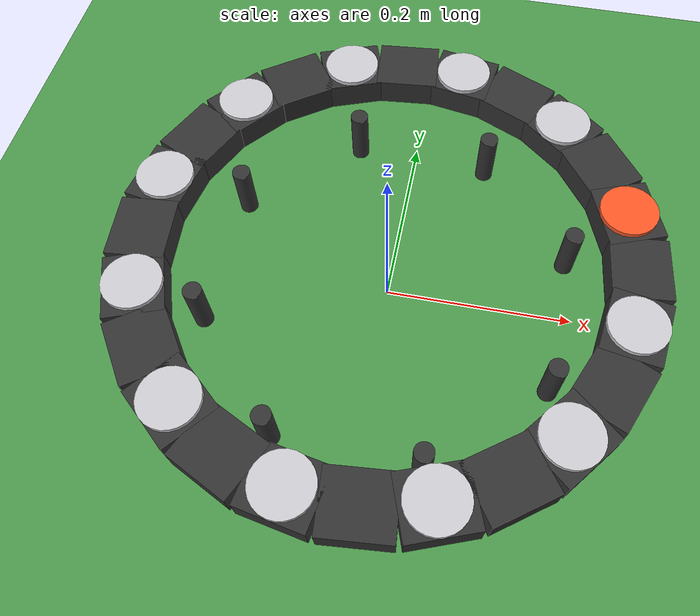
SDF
<sdf version="1.6">
 <world name="quadcopter">
  <physics name="1ms" type="ignored">
   <max_step_size>0.001</max_step_size>
   <real_time_factor>1.0</real_time_factor>
   <real_time_update_rate>500</real_time_update_rate>
  </physics>
  <plugin filename="ignition-gazebo-physics-system" name="gz::sim::systems::Physics"/>
  <plugin filename="ignition-gazebo-scene-broadcaster-system" name="gz::sim::systems::SceneBroadcaster"/>
  <plugin filename="ignition-gazebo-user-commands-system" name="gz::sim::systems::UserCommands"/>
  <plugin filename="gz-sim-imu-system" name="gz::sim::systems::Imu"/>
  <scene><background>0.6 0.8 1.0 1</background><ambient>0.5 0.5 0.5 1</ambient></scene>
  <light type="directional" name="sun">
   <pose>0 0 10 0 0 0</pose>
   <diffuse>0.8 0.8 0.8 1</diffuse>
   <specular>0.2 0.2 0.2 1</specular>
   <attenuation>
    <range>1000</range>
    <constant>0.9</constant>
    <linear>0.01</linear>
    <quadratic>0.001</quadratic>
   </attenuation>
   <direction>-0.5 0.1 -0.9</direction>
  </light>
  <include>
   <uri>/home/wesley/multi_drone_control/simulation_assets/tejen/bench_m2/m2_bench_ring.sdf</uri>
   <pose>0 0 0.1 0 0 0.349065850399</pose>
   <plugin filename="gz-sim-pose-publisher-system" name="gz::sim::systems::PosePublisher">
    <publish_link_pose>true</publish_link_pose>
    <publish_model_pose>true</publish_model_pose>
    <publish_nested_model_pose>true</publish_nested_model_pose>
    <use_pose_vector_msg>true</use_pose_vector_msg>
    <update_frequency>120</update_frequency>
   </plugin>
  </include>
  <model name="floor">
   <static>true</static>
   <link name="link">
    <collision name="col">
     <geometry><plane><normal>0 0 1</normal><size>100 100</size></plane></geometry>
     <surface><contact><collide_bitmask>0x0003</collide_bitmask></contact></surface>
    </collision>
    <visual name="vis">
     <geometry><plane><normal>0 0 1</normal><size>100 100</size></plane></geometry>
     <material>
      <ambient>0.2 0.5 0.2 1</ambient>
      <diffuse>0.3 0.6 0.3 1</diffuse>
      <specular>0.05 0.05 0.05 1</specular>
     </material>
    </visual>
   </link>
  </model>
  <model name="bench_hanger_0">
   <pose>-0.124808023933 0.349456808097 0.598402027544 0 0 0.209439510239</pose>
   <link name="hanger_link">
    <gravity>false</gravity>
    <inertial><mass>1.0</mass><inertia><ixx>0.01</ixx><iyy>0.01</iyy><izz>0.01</izz></inertia></inertial>
   </link>
   <joint name="hanger_to_world" type="fixed"><parent>world</parent><child>hanger_link</child></joint>
   <plugin filename="gz-sim-detachable-joint-system" name="gz::sim::systems::DetachableJoint">
    <parent_link>hanger_link</parent_link>
    <child_model>x3_0</child_model>
    <child_link>X3/base_link</child_link>
    <detach_topic>/bench/hanger_0/detach</detach_topic>
    <attach_topic>/bench/hanger_0/attach</attach_topic>
    <output_topic>/bench/hanger_0/state</output_topic>
   </plugin>
  </model>
  <model name="bench_hanger_1">
   <pose>0.348903089409 0.128574463944 0.598190026385 0 0 -0.314159265359</pose>
   <link name="hanger_link">
    <gravity>false</gravity>
    <inertial><mass>1.0</mass><inertia><ixx>0.01</ixx><iyy>0.01</iyy><izz>0.01</izz></inertia></inertial>
   </link>
   <joint name="hanger_to_world" type="fixed"><parent>world</parent><child>hanger_link</child></joint>
   <plugin filename="gz-sim-detachable-joint-system" name="gz::sim::systems::DetachableJoint">
    <parent_link>hanger_link</parent_link>
    <child_model>x3_1</child_model>
    <child_link>X3/base_link</child_link>
    <detach_topic>/bench/hanger_1/detach</detach_topic>
    <attach_topic>/bench/hanger_1/attach</attach_topic>
    <output_topic>/bench/hanger_1/state</output_topic>
   </plugin>
  </model>
  <model name="bench_hanger_2">
   <pose>-0.352067476285 -0.128954289524 0.597307032548 0 0 0.575958653158</pose>
   <link name="hanger_link">
    <gravity>false</gravity>
    <inertial><mass>1.0</mass><inertia><ixx>0.01</ixx><iyy>0.01</iyy><izz>0.01</izz></inertia></inertial>
   </link>
   <joint name="hanger_to_world" type="fixed"><parent>world</parent><child>hanger_link</child></joint>
   <plugin filename="gz-sim-detachable-joint-system" name="gz::sim::systems::DetachableJoint">
    <parent_link>hanger_link</parent_link>
    <child_model>x3_2</child_model>
    <child_link>X3/base_link</child_link>
    <detach_topic>/bench/hanger_2/detach</detach_topic>
    <attach_topic>/bench/hanger_2/attach</attach_topic>
    <output_topic>/bench/hanger_2/state</output_topic>
   </plugin>
  </model>
  <model name="bench_hanger_3">
   <pose>0.13002870033 -0.354643681158 0.596491180632 0 0 -0.715584993318</pose>
   <link name="hanger_link">
    <gravity>false</gravity>
    <inertial><mass>1.0</mass><inertia><ixx>0.01</ixx><iyy>0.01</iyy><izz>0.01</izz></inertia></inertial>
   </link>
   <joint name="hanger_to_world" type="fixed"><parent>world</parent><child>hanger_link</child></joint>
   <plugin filename="gz-sim-detachable-joint-system" name="gz::sim::systems::DetachableJoint">
    <parent_link>hanger_link</parent_link>
    <child_model>x3_3</child_model>
    <child_link>X3/base_link</child_link>
    <detach_topic>/bench/hanger_3/detach</detach_topic>
    <attach_topic>/bench/hanger_3/attach</attach_topic>
    <output_topic>/bench/hanger_3/state</output_topic>
   </plugin>
  </model>
 </world>
</sdf>

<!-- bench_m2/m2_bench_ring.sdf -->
<sdf version="1.6">
  <model name="payload_model">
    <static>false</static>
    <link name="payload_link"><inertial><mass>0.86</mass><inertia><ixx>2.733e-02</ixx><ixy>0</ixy><ixz>0</ixz><iyy>2.733e-02</iyy><iyz>0</iyz><izz>5.452e-02</izz></inertia></inertial>

      <collision name="ring_segment_0_collision">
        <pose>0.250000000000 0.000000000000 -0.020000000000 0 0 1.570796326795</pose>
        <geometry><box><size>0.068067840828 0.060000000000 0.030000000000</size></box></geometry>
      <surface><contact><collide_bitmask>0x0002</collide_bitmask></contact></surface></collision>
      <visual name="ring_segment_0_visual">
        <pose>0.250000000000 0.000000000000 -0.020000000000 0 0 1.570796326795</pose>
        <geometry><box><size>0.068067840828 0.060000000000 0.030000000000</size></box></geometry>
        <material><ambient>0.12 0.12 0.12 1</ambient><diffuse>0.20 0.20 0.20 1</diffuse></material>
      </visual>
      <collision name="ring_segment_1_collision">
        <pose>0.241481456572 0.064704761276 -0.020000000000 0 0 1.832595714594</pose>
        <geometry><box><size>0.068067840828 0.060000000000 0.030000000000</size></box></geometry>
      <surface><contact><collide_bitmask>0x0002</collide_bitmask></contact></surface></collision>
      <visual name="ring_segment_1_visual">
        <pose>0.241481456572 0.064704761276 -0.020000000000 0 0 1.832595714594</pose>
        <geometry><box><size>0.068067840828 0.060000000000 0.030000000000</size></box></geometry>
        <material><ambient>0.12 0.12 0.12 1</ambient><diffuse>0.20 0.20 0.20 1</diffuse></material>
      </visual>
      <collision name="ring_segment_2_collision">
        <pose>0.216506350946 0.125000000000 -0.020000000000 0 0 2.094395102393</pose>
        <geometry><box><size>0.068067840828 0.060000000000 0.030000000000</size></box></geometry>
      <surface><contact><collide_bitmask>0x0002</collide_bitmask></contact></surface></collision>
      <visual name="ring_segment_2_visual">
        <pose>0.216506350946 0.125000000000 -0.020000000000 0 0 2.094395102393</pose>
        <geometry><box><size>0.068067840828 0.060000000000 0.030000000000</size></box></geometry>
        <material><ambient>0.12 0.12 0.12 1</ambient><diffuse>0.20 0.20 0.20 1</diffuse></material>
      </visual>
      <collision name="ring_segment_3_collision">
        <pose>0.176776695297 0.176776695297 -0.020000000000 0 0 2.356194490192</pose>
        <geometry><box><size>0.068067840828 0.060000000000 0.030000000000</size></box></geometry>
      <surface><contact><collide_bitmask>0x0002</collide_bitmask></contact></surface></collision>
      <visual name="ring_segment_3_visual">
        <pose>0.176776695297 0.176776695297 -0.020000000000 0 0 2.356194490192</pose>
        <geometry><box><size>0.068067840828 0.060000000000 0.030000000000</size></box></geometry>
        <material><ambient>0.12 0.12 0.12 1</ambient><diffuse>0.20 0.20 0.20 1</diffuse></material>
      </visual>
      <collision name="ring_segment_4_collision">
        <pose>0.125000000000 0.216506350946 -0.020000000000 0 0 2.617993877991</pose>
        <geometry><box><size>0.068067840828 0.060000000000 0.030000000000</size></box></geometry>
      <surface><contact><collide_bitmask>0x0002</collide_bitmask></contact></surface></collision>
      <visual name="ring_segment_4_visual">
        <pose>0.125000000000 0.216506350946 -0.020000000000 0 0 2.617993877991</pose>
        <geometry><box><size>0.068067840828 0.060000000000 0.030000000000</size></box></geometry>
        <material><ambient>0.12 0.12 0.12 1</ambient><diffuse>0.20 0.20 0.20 1</diffuse></material>
      </visual>
      <collision name="ring_segment_5_collision">
        <pose>0.064704761276 0.241481456572 -0.020000000000 0 0 2.879793265791</pose>
        <geometry><box><size>0.068067840828 0.060000000000 0.030000000000</size></box></geometry>
      <surface><contact><collide_bitmask>0x0002</collide_bitmask></contact></surface></collision>
      <visual name="ring_segment_5_visual">
        <pose>0.064704761276 0.241481456572 -0.020000000000 0 0 2.879793265791</pose>
        <geometry><box><size>0.068067840828 0.060000000000 0.030000000000</size></box></geometry>
        <material><ambient>0.12 0.12 0.12 1</ambient><diffuse>0.20 0.20 0.20 1</diffuse></material>
      </visual>
      <collision name="ring_segment_6_collision">
        <pose>0.000000000000 0.250000000000 -0.020000000000 0 0 3.141592653590</pose>
        <geometry><box><size>0.068067840828 0.060000000000 0.030000000000</size></box></geometry>
      <surface><contact><collide_bitmask>0x0002</collide_bitmask></contact></surface></collision>
      <visual name="ring_segment_6_visual">
        <pose>0.000000000000 0.250000000000 -0.020000000000 0 0 3.141592653590</pose>
        <geometry><box><size>0.068067840828 0.060000000000 0.030000000000</size></box></geometry>
        <material><ambient>0.12 0.12 0.12 1</ambient><diffuse>0.20 0.20 0.20 1</diffuse></material>
      </visual>
      <collision name="ring_segment_7_collision">
        <pose>-0.064704761276 0.241481456572 -0.020000000000 0 0 3.403392041389</pose>
        <geometry><box><size>0.068067840828 0.060000000000 0.030000000000</size></box></geometry>
      <surface><contact><collide_bitmask>0x0002</collide_bitmask></contact></surface></collision>
      <visual name="ring_segment_7_visual">
        <pose>-0.064704761276 0.241481456572 -0.020000000000 0 0 3.403392041389</pose>
        <geometry><box><size>0.068067840828 0.060000000000 0.030000000000</size></box></geometry>
        <material><ambient>0.12 0.12 0.12 1</ambient><diffuse>0.20 0.20 0.20 1</diffuse></material>
      </visual>
      <collision name="ring_segment_8_collision">
        <pose>-0.125000000000 0.216506350946 -0.020000000000 0 0 3.665191429188</pose>
        <geometry><box><size>0.068067840828 0.060000000000 0.030000000000</size></box></geometry>
      <surface><contact><collide_bitmask>0x0002</collide_bitmask></contact></surface></collision>
      <visual name="ring_segment_8_visual">
        <pose>-0.125000000000 0.216506350946 -0.020000000000 0 0 3.665191429188</pose>
        <geometry><box><size>0.068067840828 0.060000000000 0.030000000000</size></box></geometry>
        <material><ambient>0.12 0.12 0.12 1</ambient><diffuse>0.20 0.20 0.20 1</diffuse></material>
      </visual>
      <collision name="ring_segment_9_collision">
        <pose>-0.176776695297 0.176776695297 -0.020000000000 0 0 3.926990816987</pose>
        <geometry><box><size>0.068067840828 0.060000000000 0.030000000000</size></box></geometry>
      <surface><contact><collide_bitmask>0x0002</collide_bitmask></contact></surface></collision>
      <visual name="ring_segment_9_visual">
        <pose>-0.176776695297 0.176776695297 -0.020000000000 0 0 3.926990816987</pose>
        <geometry><box><size>0.068067840828 0.060000000000 0.030000000000</size></box></geometry>
        <material><ambient>0.12 0.12 0.12 1</ambient><diffuse>0.20 0.20 0.20 1</diffuse></material>
      </visual>
      <collision name="ring_segment_10_collision">
        <pose>-0.216506350946 0.125000000000 -0.020000000000 0 0 4.188790204786</pose>
        <geometry><box><size>0.068067840828 0.060000000000 0.030000000000</size></box></geometry>
      <surface><contact><collide_bitmask>0x0002</collide_bitmask></contact></surface></collision>
      <visual name="ring_segment_10_visual">
        <pose>-0.216506350946 0.125000000000 -0.020000000000 0 0 4.188790204786</pose>
        <geometry><box><size>0.068067840828 0.060000000000 0.030000000000</size></box></geometry>
        <material><ambient>0.12 0.12 0.12 1</ambient><diffuse>0.20 0.20 0.20 1</diffuse></material>
      </visual>
      <collision name="ring_segment_11_collision">
        <pose>-0.241481456572 0.064704761276 -0.020000000000 0 0 4.450589592586</pose>
        <geometry><box><size>0.068067840828 0.060000000000 0.030000000000</size></box></geometry>
      <surface><contact><collide_bitmask>0x0002</collide_bitmask></contact></surface></collision>
      <visual name="ring_segment_11_visual">
        <pose>-0.241481456572 0.064704761276 -0.020000000000 0 0 4.450589592586</pose>
        <geometry><box><size>0.068067840828 0.060000000000 0.030000000000</size></box></geometry>
        <material><ambient>0.12 0.12 0.12 1</ambient><diffuse>0.20 0.20 0.20 1</diffuse></material>
      </visual>
      <collision name="ring_segment_12_collision">
        <pose>-0.250000000000 0.000000000000 -0.020000000000 0 0 4.712388980385</pose>
        <geometry><box><size>0.068067840828 0.060000000000 0.030000000000</size></box></geometry>
      <surface><contact><collide_bitmask>0x0002</collide_bitmask></contact></surface></collision>
      <visual name="ring_segment_12_visual">
        <pose>-0.250000000000 0.000000000000 -0.020000000000 0 0 4.712388980385</pose>
        <geometry><box><size>0.068067840828 0.060000000000 0.030000000000</size></box></geometry>
        <material><ambient>0.12 0.12 0.12 1</ambient><diffuse>0.20 0.20 0.20 1</diffuse></material>
      </visual>
      <collision name="ring_segment_13_collision">
        <pose>-0.241481456572 -0.064704761276 -0.020000000000 0 0 4.974188368184</pose>
        <geometry><box><size>0.068067840828 0.060000000000 0.030000000000</size></box></geometry>
      <surface><contact><collide_bitmask>0x0002</collide_bitmask></contact></surface></collision>
      <visual name="ring_segment_13_visual">
        <pose>-0.241481456572 -0.064704761276 -0.020000000000 0 0 4.974188368184</pose>
        <geometry><box><size>0.068067840828 0.060000000000 0.030000000000</size></box></geometry>
        <material><ambient>0.12 0.12 0.12 1</ambient><diffuse>0.20 0.20 0.20 1</diffuse></material>
      </visual>
      <collision name="ring_segment_14_collision">
        <pose>-0.216506350946 -0.125000000000 -0.020000000000 0 0 5.235987755983</pose>
        <geometry><box><size>0.068067840828 0.060000000000 0.030000000000</size></box></geometry>
      <surface><contact><collide_bitmask>0x0002</collide_bitmask></contact></surface></collision>
      <visual name="ring_segment_14_visual">
        <pose>-0.216506350946 -0.125000000000 -0.020000000000 0 0 5.235987755983</pose>
        <geometry><box><size>0.068067840828 0.060000000000 0.030000000000</size></box></geometry>
        <material><ambient>0.12 0.12 0.12 1</ambient><diffuse>0.20 0.20 0.20 1</diffuse></material>
      </visual>
      <collision name="ring_segment_15_collision">
        <pose>-0.176776695297 -0.176776695297 -0.020000000000 0 0 5.497787143782</pose>
        <geometry><box><size>0.068067840828 0.060000000000 0.030000000000</size></box></geometry>
      <surface><contact><collide_bitmask>0x0002</collide_bitmask></contact></surface></collision>
      <visual name="ring_segment_15_visual">
        <pose>-0.176776695297 -0.176776695297 -0.020000000000 0 0 5.497787143782</pose>
        <geometry><box><size>0.068067840828 0.060000000000 0.030000000000</size></box></geometry>
        <material><ambient>0.12 0.12 0.12 1</ambient><diffuse>0.20 0.20 0.20 1</diffuse></material>
      </visual>
      <collision name="ring_segment_16_collision">
        <pose>-0.125000000000 -0.216506350946 -0.020000000000 0 0 5.759586531581</pose>
        <geometry><box><size>0.068067840828 0.060000000000 0.030000000000</size></box></geometry>
      <surface><contact><collide_bitmask>0x0002</collide_bitmask></contact></surface></collision>
      <visual name="ring_segment_16_visual">
        <pose>-0.125000000000 -0.216506350946 -0.020000000000 0 0 5.759586531581</pose>
        <geometry><box><size>0.068067840828 0.060000000000 0.030000000000</size></box></geometry>
        <material><ambient>0.12 0.12 0.12 1</ambient><diffuse>0.20 0.20 0.20 1</diffuse></material>
      </visual>
      <collision name="ring_segment_17_collision">
        <pose>-0.064704761276 -0.241481456572 -0.020000000000 0 0 6.021385919380</pose>
        <geometry><box><size>0.068067840828 0.060000000000 0.030000000000</size></box></geometry>
      <surface><contact><collide_bitmask>0x0002</collide_bitmask></contact></surface></collision>
      <visual name="ring_segment_17_visual">
        <pose>-0.064704761276 -0.241481456572 -0.020000000000 0 0 6.021385919380</pose>
        <geometry><box><size>0.068067840828 0.060000000000 0.030000000000</size></box></geometry>
        <material><ambient>0.12 0.12 0.12 1</ambient><diffuse>0.20 0.20 0.20 1</diffuse></material>
      </visual>
      <collision name="ring_segment_18_collision">
        <pose>-0.000000000000 -0.250000000000 -0.020000000000 0 0 6.283185307180</pose>
        <geometry><box><size>0.068067840828 0.060000000000 0.030000000000</size></box></geometry>
      <surface><contact><collide_bitmask>0x0002</collide_bitmask></contact></surface></collision>
      <visual name="ring_segment_18_visual">
        <pose>-0.000000000000 -0.250000000000 -0.020000000000 0 0 6.283185307180</pose>
        <geometry><box><size>0.068067840828 0.060000000000 0.030000000000</size></box></geometry>
        <material><ambient>0.12 0.12 0.12 1</ambient><diffuse>0.20 0.20 0.20 1</diffuse></material>
      </visual>
      <collision name="ring_segment_19_collision">
        <pose>0.064704761276 -0.241481456572 -0.020000000000 0 0 6.544984694979</pose>
        <geometry><box><size>0.068067840828 0.060000000000 0.030000000000</size></box></geometry>
      <surface><contact><collide_bitmask>0x0002</collide_bitmask></contact></surface></collision>
      <visual name="ring_segment_19_visual">
        <pose>0.064704761276 -0.241481456572 -0.020000000000 0 0 6.544984694979</pose>
        <geometry><box><size>0.068067840828 0.060000000000 0.030000000000</size></box></geometry>
        <material><ambient>0.12 0.12 0.12 1</ambient><diffuse>0.20 0.20 0.20 1</diffuse></material>
      </visual>
      <collision name="ring_segment_20_collision">
        <pose>0.125000000000 -0.216506350946 -0.020000000000 0 0 6.806784082778</pose>
        <geometry><box><size>0.068067840828 0.060000000000 0.030000000000</size></box></geometry>
      <surface><contact><collide_bitmask>0x0002</collide_bitmask></contact></surface></collision>
      <visual name="ring_segment_20_visual">
        <pose>0.125000000000 -0.216506350946 -0.020000000000 0 0 6.806784082778</pose>
        <geometry><box><size>0.068067840828 0.060000000000 0.030000000000</size></box></geometry>
        <material><ambient>0.12 0.12 0.12 1</ambient><diffuse>0.20 0.20 0.20 1</diffuse></material>
      </visual>
      <collision name="ring_segment_21_collision">
        <pose>0.176776695297 -0.176776695297 -0.020000000000 0 0 7.068583470577</pose>
        <geometry><box><size>0.068067840828 0.060000000000 0.030000000000</size></box></geometry>
      <surface><contact><collide_bitmask>0x0002</collide_bitmask></contact></surface></collision>
      <visual name="ring_segment_21_visual">
        <pose>0.176776695297 -0.176776695297 -0.020000000000 0 0 7.068583470577</pose>
        <geometry><box><size>0.068067840828 0.060000000000 0.030000000000</size></box></geometry>
        <material><ambient>0.12 0.12 0.12 1</ambient><diffuse>0.20 0.20 0.20 1</diffuse></material>
      </visual>
      <collision name="ring_segment_22_collision">
        <pose>0.216506350946 -0.125000000000 -0.020000000000 0 0 7.330382858376</pose>
        <geometry><box><size>0.068067840828 0.060000000000 0.030000000000</size></box></geometry>
      <surface><contact><collide_bitmask>0x0002</collide_bitmask></contact></surface></collision>
      <visual name="ring_segment_22_visual">
        <pose>0.216506350946 -0.125000000000 -0.020000000000 0 0 7.330382858376</pose>
        <geometry><box><size>0.068067840828 0.060000000000 0.030000000000</size></box></geometry>
        <material><ambient>0.12 0.12 0.12 1</ambient><diffuse>0.20 0.20 0.20 1</diffuse></material>
      </visual>
      <collision name="ring_segment_23_collision">
        <pose>0.241481456572 -0.064704761276 -0.020000000000 0 0 7.592182246175</pose>
        <geometry><box><size>0.068067840828 0.060000000000 0.030000000000</size></box></geometry>
      <surface><contact><collide_bitmask>0x0002</collide_bitmask></contact></surface></collision>
      <visual name="ring_segment_23_visual">
        <pose>0.241481456572 -0.064704761276 -0.020000000000 0 0 7.592182246175</pose>
        <geometry><box><size>0.068067840828 0.060000000000 0.030000000000</size></box></geometry>
        <material><ambient>0.12 0.12 0.12 1</ambient><diffuse>0.20 0.20 0.20 1</diffuse></material>
      </visual>
      <collision name="plate_0_collision">
        <pose>0.250000000000 0.000000000000 -0.002500000000 0 0 0.000000000000</pose>
        <geometry><cylinder><radius>0.030</radius><length>0.005</length></cylinder></geometry>
      <surface><contact><collide_bitmask>0x0002</collide_bitmask></contact></surface></collision>
      <visual name="plate_0_visual">
        <pose>0.250000000000 0.000000000000 -0.002500000000 0 0 0.000000000000</pose>
        <geometry><cylinder><radius>0.030</radius><length>0.005</length></cylinder></geometry>
        <material><ambient>0.90 0.25 0.10 1</ambient><diffuse>1.00 0.35 0.15 1</diffuse></material>
      </visual>
      <collision name="plate_1_collision">
        <pose>0.216506350946 0.125000000000 -0.002500000000 0 0 0.523598775598</pose>
        <geometry><cylinder><radius>0.030</radius><length>0.005</length></cylinder></geometry>
      <surface><contact><collide_bitmask>0x0002</collide_bitmask></contact></surface></collision>
      <visual name="plate_1_visual">
        <pose>0.216506350946 0.125000000000 -0.002500000000 0 0 0.523598775598</pose>
        <geometry><cylinder><radius>0.030</radius><length>0.005</length></cylinder></geometry>
        <material><ambient>0.65 0.65 0.68 1</ambient><diffuse>0.80 0.80 0.82 1</diffuse></material>
      </visual>
      <collision name="plate_2_collision">
        <pose>0.125000000000 0.216506350946 -0.002500000000 0 0 1.047197551197</pose>
        <geometry><cylinder><radius>0.030</radius><length>0.005</length></cylinder></geometry>
      <surface><contact><collide_bitmask>0x0002</collide_bitmask></contact></surface></collision>
      <visual name="plate_2_visual">
        <pose>0.125000000000 0.216506350946 -0.002500000000 0 0 1.047197551197</pose>
        <geometry><cylinder><radius>0.030</radius><length>0.005</length></cylinder></geometry>
        <material><ambient>0.65 0.65 0.68 1</ambient><diffuse>0.80 0.80 0.82 1</diffuse></material>
      </visual>
      <collision name="plate_3_collision">
        <pose>0.000000000000 0.250000000000 -0.002500000000 0 0 1.570796326795</pose>
        <geometry><cylinder><radius>0.030</radius><length>0.005</length></cylinder></geometry>
      <surface><contact><collide_bitmask>0x0002</collide_bitmask></contact></surface></collision>
      <visual name="plate_3_visual">
        <pose>0.000000000000 0.250000000000 -0.002500000000 0 0 1.570796326795</pose>
        <geometry><cylinder><radius>0.030</radius><length>0.005</length></cylinder></geometry>
        <material><ambient>0.65 0.65 0.68 1</ambient><diffuse>0.80 0.80 0.82 1</diffuse></material>
      </visual>
      <collision name="plate_4_collision">
        <pose>-0.125000000000 0.216506350946 -0.002500000000 0 0 2.094395102393</pose>
        <geometry><cylinder><radius>0.030</radius><length>0.005</length></cylinder></geometry>
      <surface><contact><collide_bitmask>0x0002</collide_bitmask></contact></surface></collision>
      <visual name="plate_4_visual">
        <pose>-0.125000000000 0.216506350946 -0.002500000000 0 0 2.094395102393</pose>
        <geometry><cylinder><radius>0.030</radius><length>0.005</length></cylinder></geometry>
        <material><ambient>0.65 0.65 0.68 1</ambient><diffuse>0.80 0.80 0.82 1</diffuse></material>
      </visual>
      <collision name="plate_5_collision">
        <pose>-0.216506350946 0.125000000000 -0.002500000000 0 0 2.617993877991</pose>
        <geometry><cylinder><radius>0.030</radius><length>0.005</length></cylinder></geometry>
      <surface><contact><collide_bitmask>0x0002</collide_bitmask></contact></surface></collision>
      <visual name="plate_5_visual">
        <pose>-0.216506350946 0.125000000000 -0.002500000000 0 0 2.617993877991</pose>
        <geometry><cylinder><radius>0.030</radius><length>0.005</length></cylinder></geometry>
        <material><ambient>0.65 0.65 0.68 1</ambient><diffuse>0.80 0.80 0.82 1</diffuse></material>
      </visual>
      <collision name="plate_6_collision">
        <pose>-0.250000000000 0.000000000000 -0.002500000000 0 0 3.141592653590</pose>
        <geometry><cylinder><radius>0.030</radius><length>0.005</length></cylinder></geometry>
      <surface><contact><collide_bitmask>0x0002</collide_bitmask></contact></surface></collision>
      <visual name="plate_6_visual">
        <pose>-0.250000000000 0.000000000000 -0.002500000000 0 0 3.141592653590</pose>
        <geometry><cylinder><radius>0.030</radius><length>0.005</length></cylinder></geometry>
        <material><ambient>0.65 0.65 0.68 1</ambient><diffuse>0.80 0.80 0.82 1</diffuse></material>
      </visual>
      <collision name="plate_7_collision">
        <pose>-0.216506350946 -0.125000000000 -0.002500000000 0 0 3.665191429188</pose>
        <geometry><cylinder><radius>0.030</radius><length>0.005</length></cylinder></geometry>
      <surface><contact><collide_bitmask>0x0002</collide_bitmask></contact></surface></collision>
      <visual name="plate_7_visual">
        <pose>-0.216506350946 -0.125000000000 -0.002500000000 0 0 3.665191429188</pose>
        <geometry><cylinder><radius>0.030</radius><length>0.005</length></cylinder></geometry>
        <material><ambient>0.65 0.65 0.68 1</ambient><diffuse>0.80 0.80 0.82 1</diffuse></material>
      </visual>
      <collision name="plate_8_collision">
        <pose>-0.125000000000 -0.216506350946 -0.002500000000 0 0 4.188790204786</pose>
        <geometry><cylinder><radius>0.030</radius><length>0.005</length></cylinder></geometry>
      <surface><contact><collide_bitmask>0x0002</collide_bitmask></contact></surface></collision>
      <visual name="plate_8_visual">
        <pose>-0.125000000000 -0.216506350946 -0.002500000000 0 0 4.188790204786</pose>
        <geometry><cylinder><radius>0.030</radius><length>0.005</length></cylinder></geometry>
        <material><ambient>0.65 0.65 0.68 1</ambient><diffuse>0.80 0.80 0.82 1</diffuse></material>
      </visual>
      <collision name="plate_9_collision">
        <pose>-0.000000000000 -0.250000000000 -0.002500000000 0 0 4.712388980385</pose>
        <geometry><cylinder><radius>0.030</radius><length>0.005</length></cylinder></geometry>
      <surface><contact><collide_bitmask>0x0002</collide_bitmask></contact></surface></collision>
      <visual name="plate_9_visual">
        <pose>-0.000000000000 -0.250000000000 -0.002500000000 0 0 4.712388980385</pose>
        <geometry><cylinder><radius>0.030</radius><length>0.005</length></cylinder></geometry>
        <material><ambient>0.65 0.65 0.68 1</ambient><diffuse>0.80 0.80 0.82 1</diffuse></material>
      </visual>
      <collision name="plate_10_collision">
        <pose>0.125000000000 -0.216506350946 -0.002500000000 0 0 5.235987755983</pose>
        <geometry><cylinder><radius>0.030</radius><length>0.005</length></cylinder></geometry>
      <surface><contact><collide_bitmask>0x0002</collide_bitmask></contact></surface></collision>
      <visual name="plate_10_visual">
        <pose>0.125000000000 -0.216506350946 -0.002500000000 0 0 5.235987755983</pose>
        <geometry><cylinder><radius>0.030</radius><length>0.005</length></cylinder></geometry>
        <material><ambient>0.65 0.65 0.68 1</ambient><diffuse>0.80 0.80 0.82 1</diffuse></material>
      </visual>
      <collision name="plate_11_collision">
        <pose>0.216506350946 -0.125000000000 -0.002500000000 0 0 5.759586531581</pose>
        <geometry><cylinder><radius>0.030</radius><length>0.005</length></cylinder></geometry>
      <surface><contact><collide_bitmask>0x0002</collide_bitmask></contact></surface></collision>
      <visual name="plate_11_visual">
        <pose>0.216506350946 -0.125000000000 -0.002500000000 0 0 5.759586531581</pose>
        <geometry><cylinder><radius>0.030</radius><length>0.005</length></cylinder></geometry>
        <material><ambient>0.65 0.65 0.68 1</ambient><diffuse>0.80 0.80 0.82 1</diffuse></material>
      </visual>
      <collision name="ground_leg_0_collision">
        <pose>0.200000000000 0.000000000000 -0.067500000000 0 0 0</pose>
        <geometry><cylinder><radius>0.010</radius><length>0.065</length></cylinder></geometry>
      <surface><contact><collide_bitmask>0x0002</collide_bitmask></contact></surface></collision>
      <visual name="ground_leg_0_visual">
        <pose>0.200000000000 0.000000000000 -0.067500000000 0 0 0</pose>
        <geometry><cylinder><radius>0.010</radius><length>0.065</length></cylinder></geometry>
        <material><ambient>0.12 0.12 0.12 1</ambient><diffuse>0.20 0.20 0.20 1</diffuse></material>
      </visual>
      <collision name="ground_leg_1_collision">
        <pose>0.141421356237 0.141421356237 -0.067500000000 0 0 0</pose>
        <geometry><cylinder><radius>0.010</radius><length>0.065</length></cylinder></geometry>
      <surface><contact><collide_bitmask>0x0002</collide_bitmask></contact></surface></collision>
      <visual name="ground_leg_1_visual">
        <pose>0.141421356237 0.141421356237 -0.067500000000 0 0 0</pose>
        <geometry><cylinder><radius>0.010</radius><length>0.065</length></cylinder></geometry>
        <material><ambient>0.12 0.12 0.12 1</ambient><diffuse>0.20 0.20 0.20 1</diffuse></material>
      </visual>
      <collision name="ground_leg_2_collision">
        <pose>0.000000000000 0.200000000000 -0.067500000000 0 0 0</pose>
        <geometry><cylinder><radius>0.010</radius><length>0.065</length></cylinder></geometry>
      <surface><contact><collide_bitmask>0x0002</collide_bitmask></contact></surface></collision>
      <visual name="ground_leg_2_visual">
        <pose>0.000000000000 0.200000000000 -0.067500000000 0 0 0</pose>
        <geometry><cylinder><radius>0.010</radius><length>0.065</length></cylinder></geometry>
        <material><ambient>0.12 0.12 0.12 1</ambient><diffuse>0.20 0.20 0.20 1</diffuse></material>
      </visual>
      <collision name="ground_leg_3_collision">
        <pose>-0.141421356237 0.141421356237 -0.067500000000 0 0 0</pose>
        <geometry><cylinder><radius>0.010</radius><length>0.065</length></cylinder></geometry>
      <surface><contact><collide_bitmask>0x0002</collide_bitmask></contact></surface></collision>
      <visual name="ground_leg_3_visual">
        <pose>-0.141421356237 0.141421356237 -0.067500000000 0 0 0</pose>
        <geometry><cylinder><radius>0.010</radius><length>0.065</length></cylinder></geometry>
        <material><ambient>0.12 0.12 0.12 1</ambient><diffuse>0.20 0.20 0.20 1</diffuse></material>
      </visual>
      <collision name="ground_leg_4_collision">
        <pose>-0.200000000000 0.000000000000 -0.067500000000 0 0 0</pose>
        <geometry><cylinder><radius>0.010</radius><length>0.065</length></cylinder></geometry>
      <surface><contact><collide_bitmask>0x0002</collide_bitmask></contact></surface></collision>
      <visual name="ground_leg_4_visual">
        <pose>-0.200000000000 0.000000000000 -0.067500000000 0 0 0</pose>
        <geometry><cylinder><radius>0.010</radius><length>0.065</length></cylinder></geometry>
        <material><ambient>0.12 0.12 0.12 1</ambient><diffuse>0.20 0.20 0.20 1</diffuse></material>
      </visual>
      <collision name="ground_leg_5_collision">
        <pose>-0.141421356237 -0.141421356237 -0.067500000000 0 0 0</pose>
        <geometry><cylinder><radius>0.010</radius><length>0.065</length></cylinder></geometry>
      <surface><contact><collide_bitmask>0x0002</collide_bitmask></contact></surface></collision>
      <visual name="ground_leg_5_visual">
        <pose>-0.141421356237 -0.141421356237 -0.067500000000 0 0 0</pose>
        <geometry><cylinder><radius>0.010</radius><length>0.065</length></cylinder></geometry>
        <material><ambient>0.12 0.12 0.12 1</ambient><diffuse>0.20 0.20 0.20 1</diffuse></material>
      </visual>
      <collision name="ground_leg_6_collision">
        <pose>-0.000000000000 -0.200000000000 -0.067500000000 0 0 0</pose>
        <geometry><cylinder><radius>0.010</radius><length>0.065</length></cylinder></geometry>
      <surface><contact><collide_bitmask>0x0002</collide_bitmask></contact></surface></collision>
      <visual name="ground_leg_6_visual">
        <pose>-0.000000000000 -0.200000000000 -0.067500000000 0 0 0</pose>
        <geometry><cylinder><radius>0.010</radius><length>0.065</length></cylinder></geometry>
        <material><ambient>0.12 0.12 0.12 1</ambient><diffuse>0.20 0.20 0.20 1</diffuse></material>
      </visual>
      <collision name="ground_leg_7_collision">
        <pose>0.141421356237 -0.141421356237 -0.067500000000 0 0 0</pose>
        <geometry><cylinder><radius>0.010</radius><length>0.065</length></cylinder></geometry>
      <surface><contact><collide_bitmask>0x0002</collide_bitmask></contact></surface></collision>
      <visual name="ground_leg_7_visual">
        <pose>0.141421356237 -0.141421356237 -0.067500000000 0 0 0</pose>
        <geometry><cylinder><radius>0.010</radius><length>0.065</length></cylinder></geometry>
        <material><ambient>0.12 0.12 0.12 1</ambient><diffuse>0.20 0.20 0.20 1</diffuse></material>
      </visual>
    </link>
  <plugin filename="gz-sim-detachable-joint-system" name="gz::sim::systems::DetachableJoint">
  <parent_link>payload_link</parent_link>
  <child_model>x3_0</child_model>
  <child_link>magnet_tip_link</child_link>
  <detach_topic>/drone_0/magnet/detach</detach_topic>
  <attach_topic>/drone_0/magnet/attach</attach_topic>
  <output_topic>/drone_0/magnet/joint_detached_truth</output_topic>
</plugin>
<plugin filename="gz-sim-detachable-joint-system" name="gz::sim::systems::DetachableJoint">
  <parent_link>payload_link</parent_link>
  <child_model>x3_1</child_model>
  <child_link>magnet_tip_link</child_link>
  <detach_topic>/drone_1/magnet/detach</detach_topic>
  <attach_topic>/drone_1/magnet/attach</attach_topic>
  <output_topic>/drone_1/magnet/joint_detached_truth</output_topic>
</plugin>
<plugin filename="gz-sim-detachable-joint-system" name="gz::sim::systems::DetachableJoint">
  <parent_link>payload_link</parent_link>
  <child_model>x3_2</child_model>
  <child_link>magnet_tip_link</child_link>
  <detach_topic>/drone_2/magnet/detach</detach_topic>
  <attach_topic>/drone_2/magnet/attach</attach_topic>
  <output_topic>/drone_2/magnet/joint_detached_truth</output_topic>
</plugin>
<plugin filename="gz-sim-detachable-joint-system" name="gz::sim::systems::DetachableJoint">
  <parent_link>payload_link</parent_link>
  <child_model>x3_3</child_model>
  <child_link>magnet_tip_link</child_link>
  <detach_topic>/drone_3/magnet/detach</detach_topic>
  <attach_topic>/drone_3/magnet/attach</attach_topic>
  <output_topic>/drone_3/magnet/joint_detached_truth</output_topic>
</plugin>
</model>
</sdf>
